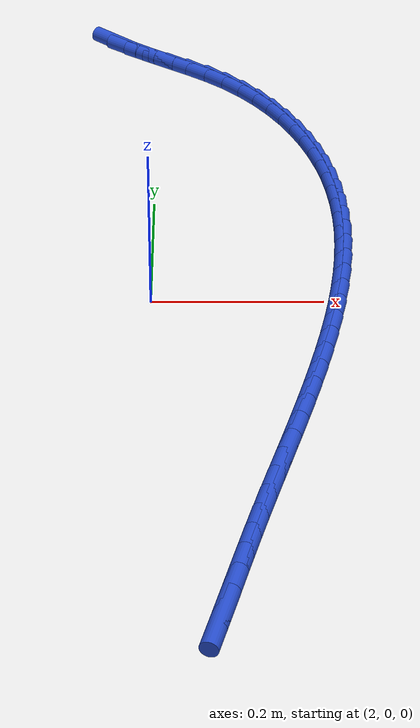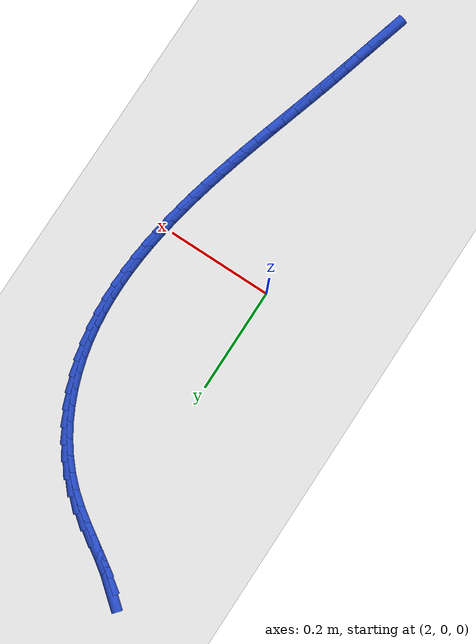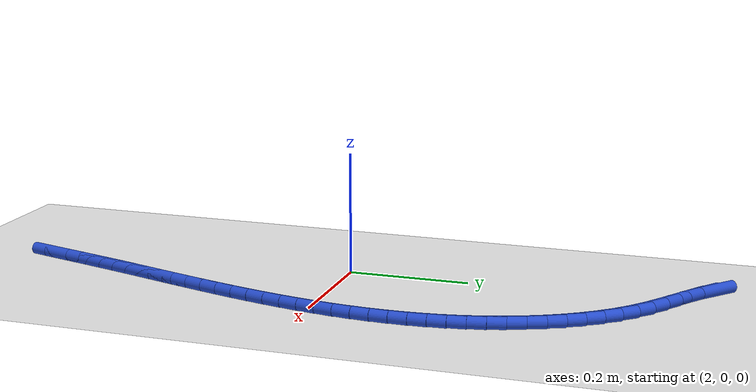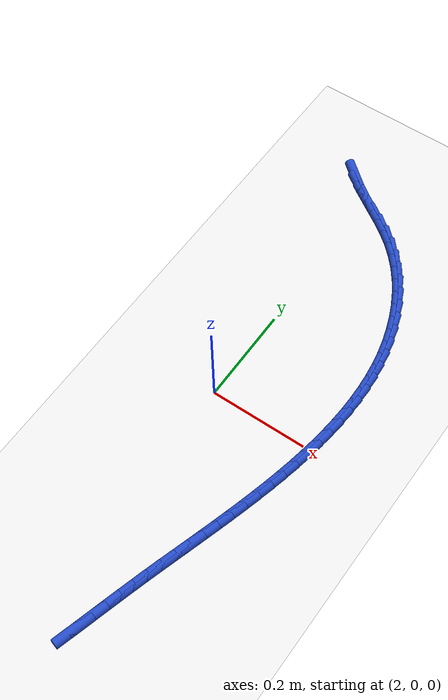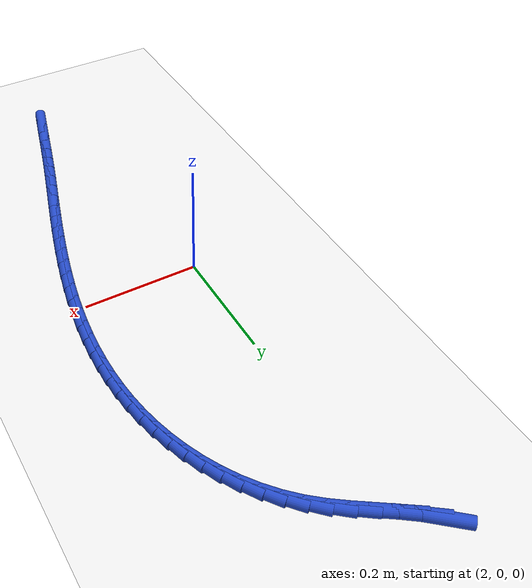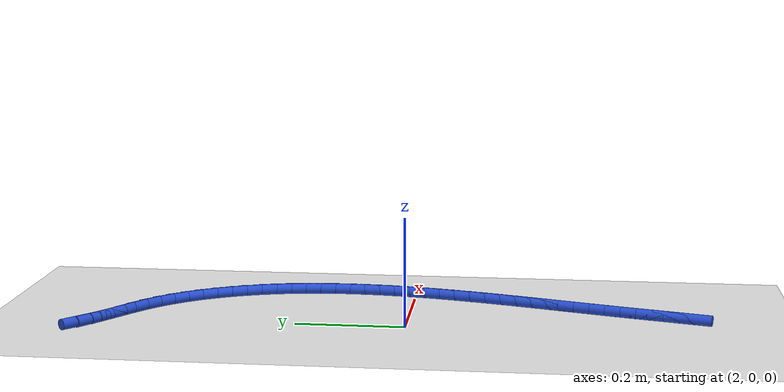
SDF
<sdf version="1.6">
 <world name="default">
  <model name="ground_plane">
   <static>1</static>
   <link name="link">
    <collision name="collision">
     <geometry><plane><normal>0 0 1</normal><size>100 100</size></plane></geometry>
     <surface><friction><ode><mu>100</mu><mu2>50</mu2></ode></friction></surface>
    </collision>
    <visual name="visual">
     <cast_shadows>0</cast_shadows>
     <geometry><plane><normal>0 0 1</normal><size>100 100</size></plane></geometry>
     <material>
      <script><uri>file://media/materials/scripts/gazebo.material</uri><name>Gazebo/WhiteGlow</name></script>
     </material>
    </visual>
   </link>
  </model>
  <model name="line">
   <link name="link_106">
    <pose>1.9435251936244535 0.5828191547525867 0.01 0 1.57 -0.6947919731146291</pose>
    <collision name="collision">
     <geometry><cylinder><radius>0.01</radius><length>0.08</length></cylinder></geometry>
    </collision>
    <visual name="visual">
     <material>
      <script><name>Gazebo/Blue</name><uri>file://media/materials/scripts/gazebo.material</uri></script>
     </material>
     <geometry><cylinder><radius>0.01</radius><length>0.08</length></cylinder></geometry>
    </visual>
   </link>
   <link name="link_107">
    <pose>1.9656714744260797 0.5643619056497152 0.01 0 1.57 -0.6174131346442451</pose>
    <collision name="collision">
     <geometry><cylinder><radius>0.01</radius><length>0.08</length></cylinder></geometry>
    </collision>
    <visual name="visual">
     <material>
      <script><name>Gazebo/Blue</name><uri>file://media/materials/scripts/gazebo.material</uri></script>
     </material>
     <geometry><cylinder><radius>0.01</radius><length>0.08</length></cylinder></geometry>
    </visual>
   </link>
   <link name="link_108">
    <pose>1.9901087070363062 0.5470112042750213 0.01 0 1.57 -0.5803788316980171</pose>
    <collision name="collision">
     <geometry><cylinder><radius>0.01</radius><length>0.08</length></cylinder></geometry>
    </collision>
    <visual name="visual">
     <material>
      <script><name>Gazebo/Blue</name><uri>file://media/materials/scripts/gazebo.material</uri></script>
     </material>
     <geometry><cylinder><radius>0.01</radius><length>0.08</length></cylinder></geometry>
    </visual>
   </link>
   <link name="link_109">
    <pose>2.0158738651050023 0.5301167317877977 0.01 0 1.57 -0.5791687663942268</pose>
    <collision name="collision">
     <geometry><cylinder><radius>0.01</radius><length>0.08</length></cylinder></geometry>
    </collision>
    <visual name="visual">
     <material>
      <script><name>Gazebo/Blue</name><uri>file://media/materials/scripts/gazebo.material</uri></script>
     </material>
     <geometry><cylinder><radius>0.01</radius><length>0.08</length></cylinder></geometry>
    </visual>
   </link>
   <link name="link_110">
    <pose>2.042003922282038 0.5130281693473376 0.01 0 1.57 -0.6123176727505213</pose>
    <collision name="collision">
     <geometry><cylinder><radius>0.01</radius><length>0.08</length></cylinder></geometry>
    </collision>
    <visual name="visual">
     <material>
      <script><name>Gazebo/Blue</name><uri>file://media/materials/scripts/gazebo.material</uri></script>
     </material>
     <geometry><cylinder><radius>0.01</radius><length>0.08</length></cylinder></geometry>
    </visual>
   </link>
   <link name="link_111">
    <pose>2.0675358522172824 0.4950951981129338 0.01 0 1.57 -0.6806593415113341</pose>
    <collision name="collision">
     <geometry><cylinder><radius>0.01</radius><length>0.08</length></cylinder></geometry>
    </collision>
    <visual name="visual">
     <material>
      <script><name>Gazebo/Blue</name><uri>file://media/materials/scripts/gazebo.material</uri></script>
     </material>
     <geometry><cylinder><radius>0.01</radius><length>0.08</length></cylinder></geometry>
    </visual>
   </link>
   <link name="link_112">
    <pose>2.091517055732422 0.47567635947973147 0.01 0 1.57 -0.7691654315885373</pose>
    <collision name="collision">
     <geometry><cylinder><radius>0.01</radius><length>0.08</length></cylinder></geometry>
    </collision>
    <visual name="visual">
     <material>
      <script><name>Gazebo/Blue</name><uri>file://media/materials/scripts/gazebo.material</uri></script>
     </material>
     <geometry><cylinder><radius>0.01</radius><length>0.08</length></cylinder></geometry>
    </visual>
   </link>
   <link name="link_113">
    <pose>2.113409999731623 0.45448288715962587 0.01 0 1.57 -0.855271219200859</pose>
    <collision name="collision">
     <geometry><cylinder><radius>0.01</radius><length>0.08</length></cylinder></geometry>
    </collision>
    <visual name="visual">
     <material>
      <script><name>Gazebo/Blue</name><uri>file://media/materials/scripts/gazebo.material</uri></script>
     </material>
     <geometry><cylinder><radius>0.01</radius><length>0.08</length></cylinder></geometry>
    </visual>
   </link>
   <link name="link_114">
    <pose>2.1332220221310805 0.4316890057656535 0.01 0 1.57 -0.937050811662898</pose>
    <collision name="collision">
     <geometry><cylinder><radius>0.01</radius><length>0.08</length></cylinder></geometry>
    </collision>
    <visual name="visual">
     <material>
      <script><name>Gazebo/Blue</name><uri>file://media/materials/scripts/gazebo.material</uri></script>
     </material>
     <geometry><cylinder><radius>0.01</radius><length>0.08</length></cylinder></geometry>
    </visual>
   </link>
   <link name="link_115">
    <pose>2.150997453085805 0.40750037316681065 0.01 0 1.57 -1.014407682234107</pose>
    <collision name="collision">
     <geometry><cylinder><radius>0.01</radius><length>0.08</length></cylinder></geometry>
    </collision>
    <visual name="visual">
     <material>
      <script><name>Gazebo/Blue</name><uri>file://media/materials/scripts/gazebo.material</uri></script>
     </material>
     <geometry><cylinder><radius>0.01</radius><length>0.08</length></cylinder></geometry>
    </visual>
   </link>
   <link name="link_116">
    <pose>2.166780622750807 0.3821226472320933 0.01 0 1.57 -1.0874793252130357</pose>
    <collision name="collision">
     <geometry><cylinder><radius>0.01</radius><length>0.08</length></cylinder></geometry>
    </collision>
    <visual name="visual">
     <material>
      <script><name>Gazebo/Blue</name><uri>file://media/materials/scripts/gazebo.material</uri></script>
     </material>
     <geometry><cylinder><radius>0.01</radius><length>0.08</length></cylinder></geometry>
    </visual>
   </link>
   <link name="link_117">
    <pose>2.180615861281101 0.35576148583049805 0.01 0 1.57 -1.156582627364796</pose>
    <collision name="collision">
     <geometry><cylinder><radius>0.01</radius><length>0.08</length></cylinder></geometry>
    </collision>
    <visual name="visual">
     <material>
      <script><name>Gazebo/Blue</name><uri>file://media/materials/scripts/gazebo.material</uri></script>
     </material>
     <geometry><cylinder><radius>0.01</radius><length>0.08</length></cylinder></geometry>
    </visual>
   </link>
   <link name="link_118">
    <pose>2.1925474988316984 0.3286225468310213 0.01 0 1.57 -1.2221649910637342</pose>
    <collision name="collision">
     <geometry><cylinder><radius>0.01</radius><length>0.08</length></cylinder></geometry>
    </collision>
    <visual name="visual">
     <material>
      <script><name>Gazebo/Blue</name><uri>file://media/materials/scripts/gazebo.material</uri></script>
     </material>
     <geometry><cylinder><radius>0.01</radius><length>0.08</length></cylinder></geometry>
    </visual>
   </link>
   <link name="link_119">
    <pose>2.202619865557611 0.3009114881026591 0.01 0 1.57 -1.2847722456812245</pose>
    <collision name="collision">
     <geometry><cylinder><radius>0.01</radius><length>0.08</length></cylinder></geometry>
    </collision>
    <visual name="visual">
     <material>
      <script><name>Gazebo/Blue</name><uri>file://media/materials/scripts/gazebo.material</uri></script>
     </material>
     <geometry><cylinder><radius>0.01</radius><length>0.08</length></cylinder></geometry>
    </visual>
   </link>
   <link name="link_120">
    <pose>2.2108789578903276 0.27282773567704477 0.01 0 1.57 -1.3448509588291495</pose>
    <collision name="collision">
     <geometry><cylinder><radius>0.01</radius><length>0.08</length></cylinder></geometry>
    </collision>
    <visual name="visual">
     <material>
      <script><name>Gazebo/Blue</name><uri>file://media/materials/scripts/gazebo.material</uri></script>
     </material>
     <geometry><cylinder><radius>0.01</radius><length>0.08</length></cylinder></geometry>
    </visual>
   </link>
   <link name="link_121">
    <pose>2.2173967206380096 0.24447366922797995 0.01 0 1.57 -1.4021646568193684</pose>
    <collision name="collision">
     <geometry><cylinder><radius>0.01</radius><length>0.08</length></cylinder></geometry>
    </collision>
    <visual name="visual">
     <material>
      <script><name>Gazebo/Blue</name><uri>file://media/materials/scripts/gazebo.material</uri></script>
     </material>
     <geometry><cylinder><radius>0.01</radius><length>0.08</length></cylinder></geometry>
    </visual>
   </link>
   <link name="link_122">
    <pose>2.222265606417532 0.21587496967589379 0.01 0 1.57 -1.4563421005764654</pose>
    <collision name="collision">
     <geometry><cylinder><radius>0.01</radius><length>0.08</length></cylinder></geometry>
    </collision>
    <visual name="visual">
     <material>
      <script><name>Gazebo/Blue</name><uri>file://media/materials/scripts/gazebo.material</uri></script>
     </material>
     <geometry><cylinder><radius>0.01</radius><length>0.08</length></cylinder></geometry>
    </visual>
   </link>
   <link name="link_123">
    <pose>2.2255786270879208 0.18705522638787775 0.01 0 1.57 -1.5071214581337937</pose>
    <collision name="collision">
     <geometry><cylinder><radius>0.01</radius><length>0.08</length></cylinder></geometry>
    </collision>
    <visual name="visual">
     <material>
      <script><name>Gazebo/Blue</name><uri>file://media/materials/scripts/gazebo.material</uri></script>
     </material>
     <geometry><cylinder><radius>0.01</radius><length>0.08</length></cylinder></geometry>
    </visual>
   </link>
   <link name="link_124">
    <pose>2.2274287945081994 0.15803802873102288 0.01 0 1.57 -1.5543432537418942</pose>
    <collision name="collision">
     <geometry><cylinder><radius>0.01</radius><length>0.08</length></cylinder></geometry>
    </collision>
    <visual name="visual">
     <material>
      <script><name>Gazebo/Blue</name><uri>file://media/materials/scripts/gazebo.material</uri></script>
     </material>
     <geometry><cylinder><radius>0.01</radius><length>0.08</length></cylinder></geometry>
    </visual>
   </link>
   <link name="link_125">
    <pose>2.2279091205373955 0.12884696607242058 0.01 0 1.57 1.5436568715182946</pose>
    <collision name="collision">
     <geometry><cylinder><radius>0.01</radius><length>0.08</length></cylinder></geometry>
    </collision>
    <visual name="visual">
     <material>
      <script><name>Gazebo/Blue</name><uri>file://media/materials/scripts/gazebo.material</uri></script>
     </material>
     <geometry><cylinder><radius>0.01</radius><length>0.08</length></cylinder></geometry>
    </visual>
   </link>
   <link name="link_126">
    <pose>2.2271126170345332 0.09950562777916204 0.01 0 1.57 1.5036948461556188</pose>
    <collision name="collision">
     <geometry><cylinder><radius>0.01</radius><length>0.08</length></cylinder></geometry>
    </collision>
    <visual name="visual">
     <material>
      <script><name>Gazebo/Blue</name><uri>file://media/materials/scripts/gazebo.material</uri></script>
     </material>
     <geometry><cylinder><radius>0.01</radius><length>0.08</length></cylinder></geometry>
    </visual>
   </link>
   <link name="link_127">
    <pose>2.225132295858639 0.07003760321833855 0.01 0 1.57 1.4673117094863986</pose>
    <collision name="collision">
     <geometry><cylinder><radius>0.01</radius><length>0.08</length></cylinder></geometry>
    </collision>
    <visual name="visual">
     <material>
      <script><name>Gazebo/Blue</name><uri>file://media/materials/scripts/gazebo.material</uri></script>
     </material>
     <geometry><cylinder><radius>0.01</radius><length>0.08</length></cylinder></geometry>
    </visual>
   </link>
   <link name="link_128">
    <pose>2.2220611688687364 0.04046648175704132 0.01 0 1.57 1.4344193183449099</pose>
    <collision name="collision">
     <geometry><cylinder><radius>0.01</radius><length>0.08</length></cylinder></geometry>
    </collision>
    <visual name="visual">
     <material>
      <script><name>Gazebo/Blue</name><uri>file://media/materials/scripts/gazebo.material</uri></script>
     </material>
     <geometry><cylinder><radius>0.01</radius><length>0.08</length></cylinder></geometry>
    </visual>
   </link>
   <link name="link_129">
    <pose>2.217992247923852 0.010815852762361682 0.01 0 1.57 1.4049071393201755</pose>
    <collision name="collision">
     <geometry><cylinder><radius>0.01</radius><length>0.08</length></cylinder></geometry>
    </collision>
    <visual name="visual">
     <material>
      <script><name>Gazebo/Blue</name><uri>file://media/materials/scripts/gazebo.material</uri></script>
     </material>
     <geometry><cylinder><radius>0.01</radius><length>0.08</length></cylinder></geometry>
    </visual>
   </link>
   <link name="link_130">
    <pose>2.2130185448830106 -0.018890694398609135 0.01 0 1.57 1.378653892776605</pose>
    <collision name="collision">
     <geometry><cylinder><radius>0.01</radius><length>0.08</length></cylinder></geometry>
    </collision>
    <visual name="visual">
     <material>
      <script><name>Gazebo/Blue</name><uri>file://media/materials/scripts/gazebo.material</uri></script>
     </material>
     <geometry><cylinder><radius>0.01</radius><length>0.08</length></cylinder></geometry>
    </visual>
   </link>
   <link name="link_131">
    <pose>2.2072330716052377 -0.048629570358779885 0.01 0 1.57 1.355536771804835</pose>
    <collision name="collision">
     <geometry><cylinder><radius>0.01</radius><length>0.08</length></cylinder></geometry>
    </collision>
    <visual name="visual">
     <material>
      <script><name>Gazebo/Blue</name><uri>file://media/materials/scripts/gazebo.material</uri></script>
     </material>
     <geometry><cylinder><radius>0.01</radius><length>0.08</length></cylinder></geometry>
    </visual>
   </link>
   <link name="link_132">
    <pose>2.2007288399495595 -0.07837718575105934 0.01 0 1.57 1.335438521451483</pose>
    <collision name="collision">
     <geometry><cylinder><radius>0.01</radius><length>0.08</length></cylinder></geometry>
    </collision>
    <visual name="visual">
     <material>
      <script><name>Gazebo/Blue</name><uri>file://media/materials/scripts/gazebo.material</uri></script>
     </material>
     <geometry><cylinder><radius>0.01</radius><length>0.08</length></cylinder></geometry>
    </visual>
   </link>
   <link name="link_133">
    <pose>2.1935988617749995 -0.10810995120835615 0.01 0 1.57 1.3182527569636466</pose>
    <collision name="collision">
     <geometry><cylinder><radius>0.01</radius><length>0.08</length></cylinder></geometry>
    </collision>
    <visual name="visual">
     <material>
      <script><name>Gazebo/Blue</name><uri>file://media/materials/scripts/gazebo.material</uri></script>
     </material>
     <geometry><cylinder><radius>0.01</radius><length>0.08</length></cylinder></geometry>
    </visual>
   </link>
   <link name="link_134">
    <pose>2.185936148940585 -0.1378042773635791 0.01 0 1.57 1.3038879143607718</pose>
    <collision name="collision">
     <geometry><cylinder><radius>0.01</radius><length>0.08</length></cylinder></geometry>
    </collision>
    <visual name="visual">
     <material>
      <script><name>Gazebo/Blue</name><uri>file://media/materials/scripts/gazebo.material</uri></script>
     </material>
     <geometry><cylinder><radius>0.01</radius><length>0.08</length></cylinder></geometry>
    </visual>
   </link>
   <link name="link_135">
    <pose>2.1778337133053407 -0.16743657484963695 0.01 0 1.57 1.292270197222315</pose>
    <collision name="collision">
     <geometry><cylinder><radius>0.01</radius><length>0.08</length></cylinder></geometry>
    </collision>
    <visual name="visual">
     <material>
      <script><name>Gazebo/Blue</name><uri>file://media/materials/scripts/gazebo.material</uri></script>
     </material>
     <geometry><cylinder><radius>0.01</radius><length>0.08</length></cylinder></geometry>
    </visual>
   </link>
   <link name="link_136">
    <pose>2.169384566728292 -0.19698325429943844 0.01 0 1.57 1.2833458341810435</pose>
    <collision name="collision">
     <geometry><cylinder><radius>0.01</radius><length>0.08</length></cylinder></geometry>
    </collision>
    <visual name="visual">
     <material>
      <script><name>Gazebo/Blue</name><uri>file://media/materials/scripts/gazebo.material</uri></script>
     </material>
     <geometry><cylinder><radius>0.01</radius><length>0.08</length></cylinder></geometry>
    </visual>
   </link>
   <link name="link_137">
    <pose>2.1606817210684626 -0.22642072634589222 0.01 0 1.57 1.277082906862534</pose>
    <collision name="collision">
     <geometry><cylinder><radius>0.01</radius><length>0.08</length></cylinder></geometry>
    </collision>
    <visual name="visual">
     <material>
      <script><name>Gazebo/Blue</name><uri>file://media/materials/scripts/gazebo.material</uri></script>
     </material>
     <geometry><cylinder><radius>0.01</radius><length>0.08</length></cylinder></geometry>
    </visual>
   </link>
   <link name="link_138">
    <pose>2.15181818818488 -0.25572540162190716 0.01 0 1.57 1.2734729554512234</pose>
    <collision name="collision">
     <geometry><cylinder><radius>0.01</radius><length>0.08</length></cylinder></geometry>
    </collision>
    <visual name="visual">
     <material>
      <script><name>Gazebo/Blue</name><uri>file://media/materials/scripts/gazebo.material</uri></script>
     </material>
     <geometry><cylinder><radius>0.01</radius><length>0.08</length></cylinder></geometry>
    </visual>
   </link>
   <link name="link_139">
    <pose>2.14288697993657 -0.28487369076039193 0.01 0 1.57 1.2725325213911942</pose>
    <collision name="collision">
     <geometry><cylinder><radius>0.01</radius><length>0.08</length></cylinder></geometry>
    </collision>
    <visual name="visual">
     <material>
      <script><name>Gazebo/Blue</name><uri>file://media/materials/scripts/gazebo.material</uri></script>
     </material>
     <geometry><cylinder><radius>0.01</radius><length>0.08</length></cylinder></geometry>
    </visual>
   </link>
   <link name="link_140">
    <pose>2.1339811081825553 -0.3138420043942553 0.01 0 1.57 1.2743047433916814</pose>
    <collision name="collision">
     <geometry><cylinder><radius>0.01</radius><length>0.08</length></cylinder></geometry>
    </collision>
    <visual name="visual">
     <material>
      <script><name>Gazebo/Blue</name><uri>file://media/materials/scripts/gazebo.material</uri></script>
     </material>
     <geometry><cylinder><radius>0.01</radius><length>0.08</length></cylinder></geometry>
    </visual>
   </link>
   <link name="link_141">
    <pose>2.125193584781863 -0.342606753156406 0.01 0 1.57 1.2788610810788095</pose>
    <collision name="collision">
     <geometry><cylinder><radius>0.01</radius><length>0.08</length></cylinder></geometry>
    </collision>
    <visual name="visual">
     <material>
      <script><name>Gazebo/Blue</name><uri>file://media/materials/scripts/gazebo.material</uri></script>
     </material>
     <geometry><cylinder><radius>0.01</radius><length>0.08</length></cylinder></geometry>
    </visual>
   </link>
   <link name="link_142">
    <pose>2.1166174215935185 -0.3711443476797527 0.01 0 1.57 1.2856582198404714</pose>
    <collision name="collision">
     <geometry><cylinder><radius>0.01</radius><length>0.08</length></cylinder></geometry>
    </collision>
    <visual name="visual">
     <material>
      <script><name>Gazebo/Blue</name><uri>file://media/materials/scripts/gazebo.material</uri></script>
     </material>
     <geometry><cylinder><radius>0.01</radius><length>0.08</length></cylinder></geometry>
    </visual>
   </link>
   <link name="link_143">
    <pose>2.1083207412220184 -0.399448532682735 0.01 0 1.57 1.2914431957104537</pose>
    <collision name="collision">
     <geometry><cylinder><radius>0.01</radius><length>0.08</length></cylinder></geometry>
    </collision>
    <visual name="visual">
     <material>
      <script><name>Gazebo/Blue</name><uri>file://media/materials/scripts/gazebo.material</uri></script>
     </material>
     <geometry><cylinder><radius>0.01</radius><length>0.08</length></cylinder></geometry>
    </visual>
   </link>
   <link name="link_144">
    <pose>2.100245016606215 -0.42760125786133074 0.01 0 1.57 1.2950734503737944</pose>
    <collision name="collision">
     <geometry><cylinder><radius>0.01</radius><length>0.08</length></cylinder></geometry>
    </collision>
    <visual name="visual">
     <material>
      <script><name>Gazebo/Blue</name><uri>file://media/materials/scripts/gazebo.material</uri></script>
     </material>
     <geometry><cylinder><radius>0.01</radius><length>0.08</length></cylinder></geometry>
    </visual>
   </link>
   <link name="link_145">
    <pose>2.092291537100084 -0.4557124587114316 0.01 0 1.57 1.296482795466644</pose>
    <collision name="collision">
     <geometry><cylinder><radius>0.01</radius><length>0.08</length></cylinder></geometry>
    </collision>
    <visual name="visual">
     <material>
      <script><name>Gazebo/Blue</name><uri>file://media/materials/scripts/gazebo.material</uri></script>
     </material>
     <geometry><cylinder><radius>0.01</radius><length>0.08</length></cylinder></geometry>
    </visual>
   </link>
   <link name="link_146">
    <pose>2.084361575734668 -0.4838920820970111 0.01 0 1.57 1.2956656203167853</pose>
    <collision name="collision">
     <geometry><cylinder><radius>0.01</radius><length>0.08</length></cylinder></geometry>
    </collision>
    <visual name="visual">
     <material>
      <script><name>Gazebo/Blue</name><uri>file://media/materials/scripts/gazebo.material</uri></script>
     </material>
     <geometry><cylinder><radius>0.01</radius><length>0.08</length></cylinder></geometry>
    </visual>
   </link>
   <link name="link_147">
    <pose>2.0763564055410115 -0.5122500748820403 0.01 0 1.57 1.2926759177655767</pose>
    <collision name="collision">
     <geometry><cylinder><radius>0.01</radius><length>0.08</length></cylinder></geometry>
    </collision>
    <visual name="visual">
     <material>
      <script><name>Gazebo/Blue</name><uri>file://media/materials/scripts/gazebo.material</uri></script>
     </material>
     <geometry><cylinder><radius>0.01</radius><length>0.08</length></cylinder></geometry>
    </visual>
   </link>
  </model>
 </world>
</sdf>
